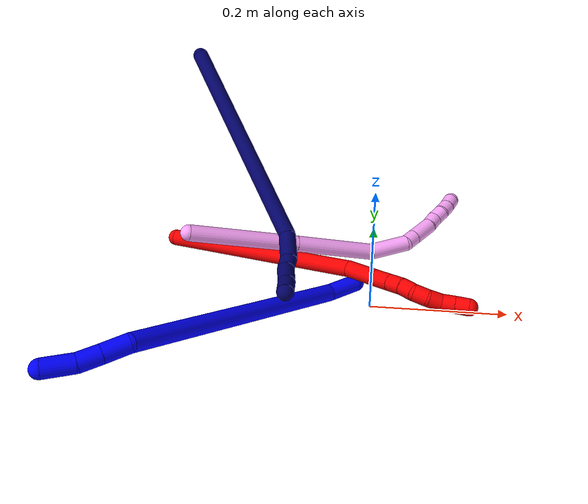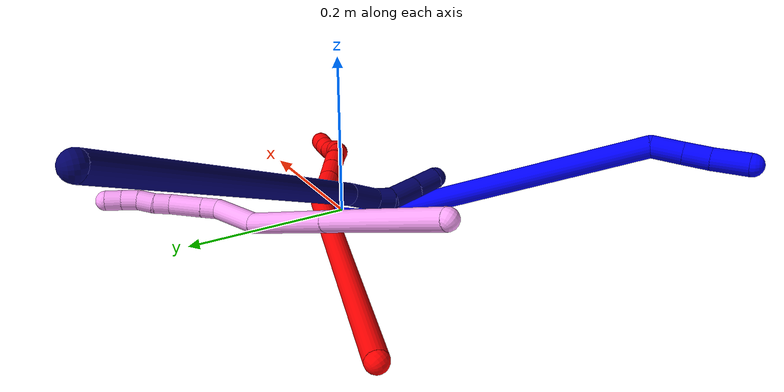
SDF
<sdf version="1.7">
 <world name="default">
  <model name="1">
   <static>0</static>
   <link name="1">
    <collision name="collision-cylinder-e_1_1_4">
     <pose>-0.003028 -0.002243 -0.01988 3.02926 -0.15021 -1.85819</pose>
     <geometry><cylinder><radius>0.0125</radius><length>0.040468</length></cylinder></geometry>
     <surface>
      <friction><ode><mu>1.16</mu><mu2>1.16</mu2><slip1>0</slip1><slip2>0</slip2></ode></friction>
      <contact><ode><kp>1e+06</kp><kd>1</kd><max_vel>0</max_vel><min_depth>0.001</min_depth></ode></contact>
     </surface>
    </collision>
    <visual name="visual-cylinder-e_1_1_4">
     <pose>-0.003028 -0.002243 -0.01988 3.02926 -0.15021 -1.85819</pose>
     <geometry><cylinder><radius>0.0125</radius><length>0.040468</length></cylinder></geometry>
     <material><ambient>0 0 1 1</ambient></material>
    </visual>
    <collision name="collision-cylinder-e_2_4_5">
     <pose>-0.005324 -0.006851 -0.054145 2.97861 0.050154 0.595919</pose>
     <geometry><cylinder><radius>0.0125</radius><length>0.029194</length></cylinder></geometry>
     <surface>
      <friction><ode><mu>1.16</mu><mu2>1.16</mu2><slip1>0</slip1><slip2>0</slip2></ode></friction>
      <contact><ode><kp>1e+06</kp><kd>1</kd><max_vel>0</max_vel><min_depth>0.001</min_depth></ode></contact>
     </surface>
    </collision>
    <visual name="visual-cylinder-e_2_4_5">
     <pose>-0.005324 -0.006851 -0.054145 2.97861 0.050154 0.595919</pose>
     <geometry><cylinder><radius>0.0125</radius><length>0.029194</length></cylinder></geometry>
     <material><ambient>0 0 1 1</ambient></material>
    </visual>
    <collision name="collision-cylinder-e_3_5_6">
     <pose>-0.003384 -0.012129 -0.085321 2.96984 0.07076 0.780155</pose>
     <geometry><cylinder><radius>0.0125</radius><length>0.034168</length></cylinder></geometry>
     <surface>
      <friction><ode><mu>1.16</mu><mu2>1.16</mu2><slip1>0</slip1><slip2>0</slip2></ode></friction>
      <contact><ode><kp>1e+06</kp><kd>1</kd><max_vel>0</max_vel><min_depth>0.001</min_depth></ode></contact>
     </surface>
    </collision>
    <visual name="visual-cylinder-e_3_5_6">
     <pose>-0.003384 -0.012129 -0.085321 2.96984 0.07076 0.780155</pose>
     <geometry><cylinder><radius>0.0125</radius><length>0.034168</length></cylinder></geometry>
     <material><ambient>0 0 1 1</ambient></material>
    </visual>
    <collision name="collision-cylinder-e_4_6_7">
     <pose>0.026494 0.037502 -0.265271 -2.83005 0.165726 -0.972915</pose>
     <geometry><cylinder><radius>0.0125</radius><length>0.347586</length></cylinder></geometry>
     <surface>
      <friction><ode><mu>1.16</mu><mu2>1.16</mu2><slip1>0</slip1><slip2>0</slip2></ode></friction>
      <contact><ode><kp>1e+06</kp><kd>1</kd><max_vel>0</max_vel><min_depth>0.001</min_depth></ode></contact>
     </surface>
    </collision>
    <visual name="visual-cylinder-e_4_6_7">
     <pose>0.026494 0.037502 -0.265271 -2.83005 0.165726 -0.972915</pose>
     <geometry><cylinder><radius>0.0125</radius><length>0.347586</length></cylinder></geometry>
     <material><ambient>0 0 1 1</ambient></material>
    </visual>
    <collision name="collision-cylinder-e_5_7_2">
     <pose>0.057982 0.089597 -0.452555 3.12303 0.116264 2.82533</pose>
     <geometry><cylinder><radius>0.0125</radius><length>0.048585</length></cylinder></geometry>
     <surface>
      <friction><ode><mu>1.16</mu><mu2>1.16</mu2><slip1>0</slip1><slip2>0</slip2></ode></friction>
      <contact><ode><kp>1e+06</kp><kd>1</kd><max_vel>0</max_vel><min_depth>0.001</min_depth></ode></contact>
     </surface>
    </collision>
    <visual name="visual-cylinder-e_5_7_2">
     <pose>0.057982 0.089597 -0.452555 3.12303 0.116264 2.82533</pose>
     <geometry><cylinder><radius>0.0125</radius><length>0.048585</length></cylinder></geometry>
     <material><ambient>0 0 1 1</ambient></material>
    </visual>
    <collision name="collision-sphere-2">
     <pose>0.0608 0.08915 -0.47668 0 -0 0</pose>
     <geometry><sphere><radius>0.0125</radius></sphere></geometry>
     <surface>
      <friction><ode><mu>1.16</mu><mu2>1.16</mu2><slip1>0</slip1><slip2>0</slip2></ode></friction>
      <contact><ode><kp>1e+06</kp><kd>1</kd><max_vel>0</max_vel><min_depth>0.001</min_depth></ode></contact>
     </surface>
    </collision>
    <visual name="visual-sphere-2">
     <pose>0.0608 0.08915 -0.47668 0 -0 0</pose>
     <geometry><sphere><radius>0.0125</radius></sphere></geometry>
     <material><ambient>0 0 1 1</ambient></material>
    </visual>
    <collision name="collision-sphere-7">
     <pose>0.055164 0.090045 -0.428431 0 -0 0</pose>
     <geometry><sphere><radius>0.0125</radius></sphere></geometry>
     <surface>
      <friction><ode><mu>1.16</mu><mu2>1.16</mu2><slip1>0</slip1><slip2>0</slip2></ode></friction>
      <contact><ode><kp>1e+06</kp><kd>1</kd><max_vel>0</max_vel><min_depth>0.001</min_depth></ode></contact>
     </surface>
    </collision>
    <visual name="visual-sphere-7">
     <pose>0.055164 0.090045 -0.428431 0 -0 0</pose>
     <geometry><sphere><radius>0.0125</radius></sphere></geometry>
     <material><ambient>0 0 1 1</ambient></material>
    </visual>
    <collision name="collision-sphere-6">
     <pose>-0.002177 -0.015041 -0.102111 0 -0 0</pose>
     <geometry><sphere><radius>0.0125</radius></sphere></geometry>
     <surface>
      <friction><ode><mu>1.16</mu><mu2>1.16</mu2><slip1>0</slip1><slip2>0</slip2></ode></friction>
      <contact><ode><kp>1e+06</kp><kd>1</kd><max_vel>0</max_vel><min_depth>0.001</min_depth></ode></contact>
     </surface>
    </collision>
    <visual name="visual-sphere-6">
     <pose>-0.002177 -0.015041 -0.102111 0 -0 0</pose>
     <geometry><sphere><radius>0.0125</radius></sphere></geometry>
     <material><ambient>0 0 1 1</ambient></material>
    </visual>
    <collision name="collision-sphere-5">
     <pose>-0.004592 -0.009216 -0.06853 0 -0 0</pose>
     <geometry><sphere><radius>0.0125</radius></sphere></geometry>
     <surface>
      <friction><ode><mu>1.16</mu><mu2>1.16</mu2><slip1>0</slip1><slip2>0</slip2></ode></friction>
      <contact><ode><kp>1e+06</kp><kd>1</kd><max_vel>0</max_vel><min_depth>0.001</min_depth></ode></contact>
     </surface>
    </collision>
    <visual name="visual-sphere-5">
     <pose>-0.004592 -0.009216 -0.06853 0 -0 0</pose>
     <geometry><sphere><radius>0.0125</radius></sphere></geometry>
     <material><ambient>0 0 1 1</ambient></material>
    </visual>
    <collision name="collision-sphere-1">
     <geometry><sphere><radius>0.0125</radius></sphere></geometry>
     <surface>
      <friction><ode><mu>1.16</mu><mu2>1.16</mu2><slip1>0</slip1><slip2>0</slip2></ode></friction>
      <contact><ode><kp>1e+06</kp><kd>1</kd><max_vel>0</max_vel><min_depth>0.001</min_depth></ode></contact>
     </surface>
    </collision>
    <visual name="visual-sphere-1">
     <geometry><sphere><radius>0.0125</radius></sphere></geometry>
     <material><ambient>0 0 1 1</ambient></material>
    </visual>
    <collision name="collision-sphere-4">
     <pose>-0.006056 -0.004485 -0.03976 0 -0 0</pose>
     <geometry><sphere><radius>0.0125</radius></sphere></geometry>
     <surface>
      <friction><ode><mu>1.16</mu><mu2>1.16</mu2><slip1>0</slip1><slip2>0</slip2></ode></friction>
      <contact><ode><kp>1e+06</kp><kd>1</kd><max_vel>0</max_vel><min_depth>0.001</min_depth></ode></contact>
     </surface>
    </collision>
    <visual name="visual-sphere-4">
     <pose>-0.006056 -0.004485 -0.03976 0 -0 0</pose>
     <geometry><sphere><radius>0.0125</radius></sphere></geometry>
     <material><ambient>0 0 1 1</ambient></material>
    </visual>
    <inertial>
     <pose>0.023265 0.033366 -0.238985 0 -0 0</pose>
     <mass>0.5</mass>
     <inertia>
      <ixx>-0.000914</ixx>
      <ixy>0</ixy>
      <ixz>0</ixz>
      <iyy>-0.004583</iyy>
      <iyz>0</iyz>
      <izz>-0.001677</izz>
     </inertia>
    </inertial>
   </link>
   <pose>-0.366515 -0.288501 0.128952 -1.44092 -0.374679 2.09561</pose>
  </model>
  <model name="2">
   <static>0</static>
   <link name="2">
    <collision name="collision-cylinder-e_1_1_4">
     <pose>0.12537 -0.030789 -0.075246 2.7532 0.995482 2.44703</pose>
     <geometry><cylinder><radius>0.0125</radius><length>0.298848</length></cylinder></geometry>
     <surface>
      <friction><ode><mu>1.16</mu><mu2>1.16</mu2><slip1>0</slip1><slip2>0</slip2></ode></friction>
      <contact><ode><kp>1e+06</kp><kd>1</kd><max_vel>0</max_vel><min_depth>0.001</min_depth></ode></contact>
     </surface>
    </collision>
    <visual name="visual-cylinder-e_1_1_4">
     <pose>0.12537 -0.030789 -0.075246 2.7532 0.995482 2.44703</pose>
     <geometry><cylinder><radius>0.0125</radius><length>0.298848</length></cylinder></geometry>
     <material><ambient>1 0 0 1</ambient></material>
    </visual>
    <collision name="collision-cylinder-e_2_4_5">
     <pose>0.266268 -0.066424 -0.170646 2.90559 0.64295 2.4576</pose>
     <geometry><cylinder><radius>0.0125</radius><length>0.051799</length></cylinder></geometry>
     <surface>
      <friction><ode><mu>1.16</mu><mu2>1.16</mu2><slip1>0</slip1><slip2>0</slip2></ode></friction>
      <contact><ode><kp>1e+06</kp><kd>1</kd><max_vel>0</max_vel><min_depth>0.001</min_depth></ode></contact>
     </surface>
    </collision>
    <visual name="visual-cylinder-e_2_4_5">
     <pose>0.266268 -0.066424 -0.170646 2.90559 0.64295 2.4576</pose>
     <geometry><cylinder><radius>0.0125</radius><length>0.051799</length></cylinder></geometry>
     <material><ambient>1 0 0 1</ambient></material>
    </visual>
    <collision name="collision-cylinder-e_3_5_6">
     <pose>0.289605 -0.073838 -0.200866 2.89189 0.644505 2.4225</pose>
     <geometry><cylinder><radius>0.0125</radius><length>0.025992</length></cylinder></geometry>
     <surface>
      <friction><ode><mu>1.16</mu><mu2>1.16</mu2><slip1>0</slip1><slip2>0</slip2></ode></friction>
      <contact><ode><kp>1e+06</kp><kd>1</kd><max_vel>0</max_vel><min_depth>0.001</min_depth></ode></contact>
     </surface>
    </collision>
    <visual name="visual-cylinder-e_3_5_6">
     <pose>0.289605 -0.073838 -0.200866 2.89189 0.644505 2.4225</pose>
     <geometry><cylinder><radius>0.0125</radius><length>0.025992</length></cylinder></geometry>
     <material><ambient>1 0 0 1</ambient></material>
    </visual>
    <collision name="collision-cylinder-e_4_6_7">
     <pose>0.304021 -0.078612 -0.21948 2.8889 0.642608 2.41243</pose>
     <geometry><cylinder><radius>0.0125</radius><length>0.022053</length></cylinder></geometry>
     <surface>
      <friction><ode><mu>1.16</mu><mu2>1.16</mu2><slip1>0</slip1><slip2>0</slip2></ode></friction>
      <contact><ode><kp>1e+06</kp><kd>1</kd><max_vel>0</max_vel><min_depth>0.001</min_depth></ode></contact>
     </surface>
    </collision>
    <visual name="visual-cylinder-e_4_6_7">
     <pose>0.304021 -0.078612 -0.21948 2.8889 0.642608 2.41243</pose>
     <geometry><cylinder><radius>0.0125</radius><length>0.022053</length></cylinder></geometry>
     <material><ambient>1 0 0 1</ambient></material>
    </visual>
    <collision name="collision-cylinder-e_5_7_8">
     <pose>0.317147 -0.081221 -0.235951 3.09089 0.687675 3.0002</pose>
     <geometry><cylinder><radius>0.0125</radius><length>0.020537</length></cylinder></geometry>
     <surface>
      <friction><ode><mu>1.16</mu><mu2>1.16</mu2><slip1>0</slip1><slip2>0</slip2></ode></friction>
      <contact><ode><kp>1e+06</kp><kd>1</kd><max_vel>0</max_vel><min_depth>0.001</min_depth></ode></contact>
     </surface>
    </collision>
    <visual name="visual-cylinder-e_5_7_8">
     <pose>0.317147 -0.081221 -0.235951 3.09089 0.687675 3.0002</pose>
     <geometry><cylinder><radius>0.0125</radius><length>0.020537</length></cylinder></geometry>
     <material><ambient>1 0 0 1</ambient></material>
    </visual>
    <collision name="collision-cylinder-e_6_8_9">
     <pose>0.332954 -0.081222 -0.248404 -3.0531 1.11572 -2.99992</pose>
     <geometry><cylinder><radius>0.0125</radius><length>0.020684</length></cylinder></geometry>
     <surface>
      <friction><ode><mu>1.16</mu><mu2>1.16</mu2><slip1>0</slip1><slip2>0</slip2></ode></friction>
      <contact><ode><kp>1e+06</kp><kd>1</kd><max_vel>0</max_vel><min_depth>0.001</min_depth></ode></contact>
     </surface>
    </collision>
    <visual name="visual-cylinder-e_6_8_9">
     <pose>0.332954 -0.081222 -0.248404 -3.0531 1.11572 -2.99992</pose>
     <geometry><cylinder><radius>0.0125</radius><length>0.020684</length></cylinder></geometry>
     <material><ambient>1 0 0 1</ambient></material>
    </visual>
    <collision name="collision-cylinder-e_7_9_10">
     <pose>0.352125 -0.079848 -0.254174 -2.47766 1.41251 -2.37349</pose>
     <geometry><cylinder><radius>0.0125</radius><length>0.020012</length></cylinder></geometry>
     <surface>
      <friction><ode><mu>1.16</mu><mu2>1.16</mu2><slip1>0</slip1><slip2>0</slip2></ode></friction>
      <contact><ode><kp>1e+06</kp><kd>1</kd><max_vel>0</max_vel><min_depth>0.001</min_depth></ode></contact>
     </surface>
    </collision>
    <visual name="visual-cylinder-e_7_9_10">
     <pose>0.352125 -0.079848 -0.254174 -2.47766 1.41251 -2.37349</pose>
     <geometry><cylinder><radius>0.0125</radius><length>0.020012</length></cylinder></geometry>
     <material><ambient>1 0 0 1</ambient></material>
    </visual>
    <collision name="collision-cylinder-e_8_10_11">
     <pose>0.371278 -0.080564 -0.258786 2.67738 1.18473 2.46607</pose>
     <geometry><cylinder><radius>0.0125</radius><length>0.020019</length></cylinder></geometry>
     <surface>
      <friction><ode><mu>1.16</mu><mu2>1.16</mu2><slip1>0</slip1><slip2>0</slip2></ode></friction>
      <contact><ode><kp>1e+06</kp><kd>1</kd><max_vel>0</max_vel><min_depth>0.001</min_depth></ode></contact>
     </surface>
    </collision>
    <visual name="visual-cylinder-e_8_10_11">
     <pose>0.371278 -0.080564 -0.258786 2.67738 1.18473 2.46607</pose>
     <geometry><cylinder><radius>0.0125</radius><length>0.020019</length></cylinder></geometry>
     <material><ambient>1 0 0 1</ambient></material>
    </visual>
    <collision name="collision-cylinder-e_9_11_2">
     <pose>0.389657 -0.083866 -0.266033 2.74685 1.13867 2.53593</pose>
     <geometry><cylinder><radius>0.0125</radius><length>0.020056</length></cylinder></geometry>
     <surface>
      <friction><ode><mu>1.16</mu><mu2>1.16</mu2><slip1>0</slip1><slip2>0</slip2></ode></friction>
      <contact><ode><kp>1e+06</kp><kd>1</kd><max_vel>0</max_vel><min_depth>0.001</min_depth></ode></contact>
     </surface>
    </collision>
    <visual name="visual-cylinder-e_9_11_2">
     <pose>0.389657 -0.083866 -0.266033 2.74685 1.13867 2.53593</pose>
     <geometry><cylinder><radius>0.0125</radius><length>0.020056</length></cylinder></geometry>
     <material><ambient>1 0 0 1</ambient></material>
    </visual>
    <collision name="collision-sphere-2">
     <pose>0.398763 -0.085481 -0.26991 0 -0 0</pose>
     <geometry><sphere><radius>0.0125</radius></sphere></geometry>
     <surface>
      <friction><ode><mu>1.16</mu><mu2>1.16</mu2><slip1>0</slip1><slip2>0</slip2></ode></friction>
      <contact><ode><kp>1e+06</kp><kd>1</kd><max_vel>0</max_vel><min_depth>0.001</min_depth></ode></contact>
     </surface>
    </collision>
    <visual name="visual-sphere-2">
     <pose>0.398763 -0.085481 -0.26991 0 -0 0</pose>
     <geometry><sphere><radius>0.0125</radius></sphere></geometry>
     <material><ambient>1 0 0 1</ambient></material>
    </visual>
    <collision name="collision-sphere-11">
     <pose>0.38055 -0.082251 -0.262156 0 -0 0</pose>
     <geometry><sphere><radius>0.0125</radius></sphere></geometry>
     <surface>
      <friction><ode><mu>1.16</mu><mu2>1.16</mu2><slip1>0</slip1><slip2>0</slip2></ode></friction>
      <contact><ode><kp>1e+06</kp><kd>1</kd><max_vel>0</max_vel><min_depth>0.001</min_depth></ode></contact>
     </surface>
    </collision>
    <visual name="visual-sphere-11">
     <pose>0.38055 -0.082251 -0.262156 0 -0 0</pose>
     <geometry><sphere><radius>0.0125</radius></sphere></geometry>
     <material><ambient>1 0 0 1</ambient></material>
    </visual>
    <collision name="collision-sphere-10">
     <pose>0.362005 -0.078876 -0.255416 0 -0 0</pose>
     <geometry><sphere><radius>0.0125</radius></sphere></geometry>
     <surface>
      <friction><ode><mu>1.16</mu><mu2>1.16</mu2><slip1>0</slip1><slip2>0</slip2></ode></friction>
      <contact><ode><kp>1e+06</kp><kd>1</kd><max_vel>0</max_vel><min_depth>0.001</min_depth></ode></contact>
     </surface>
    </collision>
    <visual name="visual-sphere-10">
     <pose>0.362005 -0.078876 -0.255416 0 -0 0</pose>
     <geometry><sphere><radius>0.0125</radius></sphere></geometry>
     <material><ambient>1 0 0 1</ambient></material>
    </visual>
    <collision name="collision-sphere-9">
     <pose>0.342244 -0.08082 -0.252932 0 -0 0</pose>
     <geometry><sphere><radius>0.0125</radius></sphere></geometry>
     <surface>
      <friction><ode><mu>1.16</mu><mu2>1.16</mu2><slip1>0</slip1><slip2>0</slip2></ode></friction>
      <contact><ode><kp>1e+06</kp><kd>1</kd><max_vel>0</max_vel><min_depth>0.001</min_depth></ode></contact>
     </surface>
    </collision>
    <visual name="visual-sphere-9">
     <pose>0.342244 -0.08082 -0.252932 0 -0 0</pose>
     <geometry><sphere><radius>0.0125</radius></sphere></geometry>
     <material><ambient>1 0 0 1</ambient></material>
    </visual>
    <collision name="collision-sphere-4">
     <pose>0.25074 -0.061577 -0.150492 0 -0 0</pose>
     <geometry><sphere><radius>0.0125</radius></sphere></geometry>
     <surface>
      <friction><ode><mu>1.16</mu><mu2>1.16</mu2><slip1>0</slip1><slip2>0</slip2></ode></friction>
      <contact><ode><kp>1e+06</kp><kd>1</kd><max_vel>0</max_vel><min_depth>0.001</min_depth></ode></contact>
     </surface>
    </collision>
    <visual name="visual-sphere-4">
     <pose>0.25074 -0.061577 -0.150492 0 -0 0</pose>
     <geometry><sphere><radius>0.0125</radius></sphere></geometry>
     <material><ambient>1 0 0 1</ambient></material>
    </visual>
    <collision name="collision-sphere-1">
     <geometry><sphere><radius>0.0125</radius></sphere></geometry>
     <surface>
      <friction><ode><mu>1.16</mu><mu2>1.16</mu2><slip1>0</slip1><slip2>0</slip2></ode></friction>
      <contact><ode><kp>1e+06</kp><kd>1</kd><max_vel>0</max_vel><min_depth>0.001</min_depth></ode></contact>
     </surface>
    </collision>
    <visual name="visual-sphere-1">
     <geometry><sphere><radius>0.0125</radius></sphere></geometry>
     <material><ambient>1 0 0 1</ambient></material>
    </visual>
    <collision name="collision-sphere-8">
     <pose>0.323665 -0.081624 -0.243876 0 -0 0</pose>
     <geometry><sphere><radius>0.0125</radius></sphere></geometry>
     <surface>
      <friction><ode><mu>1.16</mu><mu2>1.16</mu2><slip1>0</slip1><slip2>0</slip2></ode></friction>
      <contact><ode><kp>1e+06</kp><kd>1</kd><max_vel>0</max_vel><min_depth>0.001</min_depth></ode></contact>
     </surface>
    </collision>
    <visual name="visual-sphere-8">
     <pose>0.323665 -0.081624 -0.243876 0 -0 0</pose>
     <geometry><sphere><radius>0.0125</radius></sphere></geometry>
     <material><ambient>1 0 0 1</ambient></material>
    </visual>
    <collision name="collision-sphere-5">
     <pose>0.281797 -0.071271 -0.190799 0 -0 0</pose>
     <geometry><sphere><radius>0.0125</radius></sphere></geometry>
     <surface>
      <friction><ode><mu>1.16</mu><mu2>1.16</mu2><slip1>0</slip1><slip2>0</slip2></ode></friction>
      <contact><ode><kp>1e+06</kp><kd>1</kd><max_vel>0</max_vel><min_depth>0.001</min_depth></ode></contact>
     </surface>
    </collision>
    <visual name="visual-sphere-5">
     <pose>0.281797 -0.071271 -0.190799 0 -0 0</pose>
     <geometry><sphere><radius>0.0125</radius></sphere></geometry>
     <material><ambient>1 0 0 1</ambient></material>
    </visual>
    <collision name="collision-sphere-6">
     <pose>0.297413 -0.076405 -0.210933 0 -0 0</pose>
     <geometry><sphere><radius>0.0125</radius></sphere></geometry>
     <surface>
      <friction><ode><mu>1.16</mu><mu2>1.16</mu2><slip1>0</slip1><slip2>0</slip2></ode></friction>
      <contact><ode><kp>1e+06</kp><kd>1</kd><max_vel>0</max_vel><min_depth>0.001</min_depth></ode></contact>
     </surface>
    </collision>
    <visual name="visual-sphere-6">
     <pose>0.297413 -0.076405 -0.210933 0 -0 0</pose>
     <geometry><sphere><radius>0.0125</radius></sphere></geometry>
     <material><ambient>1 0 0 1</ambient></material>
    </visual>
    <collision name="collision-sphere-7">
     <pose>0.310629 -0.080819 -0.228027 0 -0 0</pose>
     <geometry><sphere><radius>0.0125</radius></sphere></geometry>
     <surface>
      <friction><ode><mu>1.16</mu><mu2>1.16</mu2><slip1>0</slip1><slip2>0</slip2></ode></friction>
      <contact><ode><kp>1e+06</kp><kd>1</kd><max_vel>0</max_vel><min_depth>0.001</min_depth></ode></contact>
     </surface>
    </collision>
    <visual name="visual-sphere-7">
     <pose>0.310629 -0.080819 -0.228027 0 -0 0</pose>
     <geometry><sphere><radius>0.0125</radius></sphere></geometry>
     <material><ambient>1 0 0 1</ambient></material>
    </visual>
    <inertial>
     <pose>0.20237 -0.049071 -0.133948 0 -0 0</pose>
     <mass>0.5</mass>
     <inertia>
      <ixx>-0.000129</ixx>
      <ixy>0</ixy>
      <ixz>0</ixz>
      <iyy>0.002849</iyy>
      <iyz>0</iyz>
      <izz>-0.00145</izz>
     </inertia>
    </inertial>
   </link>
   <pose>-0.320396 0.128154 0.011868 -1.82203 0.286654 0.166579</pose>
  </model>
  <model name="4">
   <static>0</static>
   <link name="4">
    <collision name="collision-cylinder-e_1_1_4">
     <pose>0.070685 0.046117 -0.005526 -1.69004 0.98945 -1.09252</pose>
     <geometry><cylinder><radius>0.0125</radius><length>0.16916</length></cylinder></geometry>
     <surface>
      <friction><ode><mu>1.16</mu><mu2>1.16</mu2><slip1>0</slip1><slip2>0</slip2></ode></friction>
      <contact><ode><kp>1e+06</kp><kd>1</kd><max_vel>0</max_vel><min_depth>0.001</min_depth></ode></contact>
     </surface>
    </collision>
    <visual name="visual-cylinder-e_1_1_4">
     <pose>0.070685 0.046117 -0.005526 -1.69004 0.98945 -1.09252</pose>
     <geometry><cylinder><radius>0.0125</radius><length>0.16916</length></cylinder></geometry>
     <material><ambient>1 0.65098 0.996078 1</ambient></material>
    </visual>
    <collision name="collision-cylinder-e_2_4_5">
     <pose>0.195006 0.126808 -0.015257 -1.69184 0.994875 -1.09989</pose>
     <geometry><cylinder><radius>0.0125</radius><length>0.127903</length></cylinder></geometry>
     <surface>
      <friction><ode><mu>1.16</mu><mu2>1.16</mu2><slip1>0</slip1><slip2>0</slip2></ode></friction>
      <contact><ode><kp>1e+06</kp><kd>1</kd><max_vel>0</max_vel><min_depth>0.001</min_depth></ode></contact>
     </surface>
    </collision>
    <visual name="visual-cylinder-e_2_4_5">
     <pose>0.195006 0.126808 -0.015257 -1.69184 0.994875 -1.09989</pose>
     <geometry><cylinder><radius>0.0125</radius><length>0.127903</length></cylinder></geometry>
     <material><ambient>1 0.65098 0.996078 1</ambient></material>
    </visual>
    <collision name="collision-cylinder-e_3_5_6">
     <pose>0.267107 0.185585 -0.018318 -1.52357 0.651158 -0.623059</pose>
     <geometry><cylinder><radius>0.0125</radius><length>0.060929</length></cylinder></geometry>
     <surface>
      <friction><ode><mu>1.16</mu><mu2>1.16</mu2><slip1>0</slip1><slip2>0</slip2></ode></friction>
      <contact><ode><kp>1e+06</kp><kd>1</kd><max_vel>0</max_vel><min_depth>0.001</min_depth></ode></contact>
     </surface>
    </collision>
    <visual name="visual-cylinder-e_3_5_6">
     <pose>0.267107 0.185585 -0.018318 -1.52357 0.651158 -0.623059</pose>
     <geometry><cylinder><radius>0.0125</radius><length>0.060929</length></cylinder></geometry>
     <material><ambient>1 0.65098 0.996078 1</ambient></material>
    </visual>
    <collision name="collision-cylinder-e_4_6_7">
     <pose>0.289346 0.218344 -0.021027 -1.99396 0.382474 -0.582042</pose>
     <geometry><cylinder><radius>0.0125</radius><length>0.020225</length></cylinder></geometry>
     <surface>
      <friction><ode><mu>1.16</mu><mu2>1.16</mu2><slip1>0</slip1><slip2>0</slip2></ode></friction>
      <contact><ode><kp>1e+06</kp><kd>1</kd><max_vel>0</max_vel><min_depth>0.001</min_depth></ode></contact>
     </surface>
    </collision>
    <visual name="visual-cylinder-e_4_6_7">
     <pose>0.289346 0.218344 -0.021027 -1.99396 0.382474 -0.582042</pose>
     <geometry><cylinder><radius>0.0125</radius><length>0.020225</length></cylinder></geometry>
     <material><ambient>1 0.65098 0.996078 1</ambient></material>
    </visual>
    <collision name="collision-cylinder-e_5_7_8">
     <pose>0.300649 0.244319 -0.032557 -1.98588 0.376602 -0.568605</pose>
     <geometry><cylinder><radius>0.0125</radius><length>0.040945</length></cylinder></geometry>
     <surface>
      <friction><ode><mu>1.16</mu><mu2>1.16</mu2><slip1>0</slip1><slip2>0</slip2></ode></friction>
      <contact><ode><kp>1e+06</kp><kd>1</kd><max_vel>0</max_vel><min_depth>0.001</min_depth></ode></contact>
     </surface>
    </collision>
    <visual name="visual-cylinder-e_5_7_8">
     <pose>0.300649 0.244319 -0.032557 -1.98588 0.376602 -0.568605</pose>
     <geometry><cylinder><radius>0.0125</radius><length>0.040945</length></cylinder></geometry>
     <material><ambient>1 0.65098 0.996078 1</ambient></material>
    </visual>
    <collision name="collision-cylinder-e_6_8_9">
     <pose>0.310507 0.27013 -0.045278 -2.11211 0.233586 -0.409073</pose>
     <geometry><cylinder><radius>0.0125</radius><length>0.020125</length></cylinder></geometry>
     <surface>
      <friction><ode><mu>1.16</mu><mu2>1.16</mu2><slip1>0</slip1><slip2>0</slip2></ode></friction>
      <contact><ode><kp>1e+06</kp><kd>1</kd><max_vel>0</max_vel><min_depth>0.001</min_depth></ode></contact>
     </surface>
    </collision>
    <visual name="visual-cylinder-e_6_8_9">
     <pose>0.310507 0.27013 -0.045278 -2.11211 0.233586 -0.409073</pose>
     <geometry><cylinder><radius>0.0125</radius><length>0.020125</length></cylinder></geometry>
     <material><ambient>1 0.65098 0.996078 1</ambient></material>
    </visual>
    <collision name="collision-cylinder-e_7_9_10">
     <pose>0.315703 0.287782 -0.053562 -1.9073 0.284267 -0.397977</pose>
     <geometry><cylinder><radius>0.0125</radius><length>0.020447</length></cylinder></geometry>
     <surface>
      <friction><ode><mu>1.16</mu><mu2>1.16</mu2><slip1>0</slip1><slip2>0</slip2></ode></friction>
      <contact><ode><kp>1e+06</kp><kd>1</kd><max_vel>0</max_vel><min_depth>0.001</min_depth></ode></contact>
     </surface>
    </collision>
    <visual name="visual-cylinder-e_7_9_10">
     <pose>0.315703 0.287782 -0.053562 -1.9073 0.284267 -0.397977</pose>
     <geometry><cylinder><radius>0.0125</radius><length>0.020447</length></cylinder></geometry>
     <material><ambient>1 0.65098 0.996078 1</ambient></material>
    </visual>
    <collision name="collision-cylinder-e_8_10_11">
     <pose>0.321443 0.305076 -0.062072 -2.15148 0.290582 -0.529319</pose>
     <geometry><cylinder><radius>0.0125</radius><length>0.020051</length></cylinder></geometry>
     <surface>
      <friction><ode><mu>1.16</mu><mu2>1.16</mu2><slip1>0</slip1><slip2>0</slip2></ode></friction>
      <contact><ode><kp>1e+06</kp><kd>1</kd><max_vel>0</max_vel><min_depth>0.001</min_depth></ode></contact>
     </surface>
    </collision>
    <visual name="visual-cylinder-e_8_10_11">
     <pose>0.321443 0.305076 -0.062072 -2.15148 0.290582 -0.529319</pose>
     <geometry><cylinder><radius>0.0125</radius><length>0.020051</length></cylinder></geometry>
     <material><ambient>1 0.65098 0.996078 1</ambient></material>
    </visual>
    <collision name="collision-cylinder-e_9_11_2">
     <pose>0.326491 0.321022 -0.073239 -2.21114 0.216968 -0.427308</pose>
     <geometry><cylinder><radius>0.0125</radius><length>0.020215</length></cylinder></geometry>
     <surface>
      <friction><ode><mu>1.16</mu><mu2>1.16</mu2><slip1>0</slip1><slip2>0</slip2></ode></friction>
      <contact><ode><kp>1e+06</kp><kd>1</kd><max_vel>0</max_vel><min_depth>0.001</min_depth></ode></contact>
     </surface>
    </collision>
    <visual name="visual-cylinder-e_9_11_2">
     <pose>0.326491 0.321022 -0.073239 -2.21114 0.216968 -0.427308</pose>
     <geometry><cylinder><radius>0.0125</radius><length>0.020215</length></cylinder></geometry>
     <material><ambient>1 0.65098 0.996078 1</ambient></material>
    </visual>
    <collision name="collision-sphere-2">
     <pose>0.328667 0.328937 -0.079136 0 -0 0</pose>
     <geometry><sphere><radius>0.0125</radius></sphere></geometry>
     <surface>
      <friction><ode><mu>1.16</mu><mu2>1.16</mu2><slip1>0</slip1><slip2>0</slip2></ode></friction>
      <contact><ode><kp>1e+06</kp><kd>1</kd><max_vel>0</max_vel><min_depth>0.001</min_depth></ode></contact>
     </surface>
    </collision>
    <visual name="visual-sphere-2">
     <pose>0.328667 0.328937 -0.079136 0 -0 0</pose>
     <geometry><sphere><radius>0.0125</radius></sphere></geometry>
     <material><ambient>1 0.65098 0.996078 1</ambient></material>
    </visual>
    <collision name="collision-sphere-11">
     <pose>0.324315 0.313107 -0.067341 0 -0 0</pose>
     <geometry><sphere><radius>0.0125</radius></sphere></geometry>
     <surface>
      <friction><ode><mu>1.16</mu><mu2>1.16</mu2><slip1>0</slip1><slip2>0</slip2></ode></friction>
      <contact><ode><kp>1e+06</kp><kd>1</kd><max_vel>0</max_vel><min_depth>0.001</min_depth></ode></contact>
     </surface>
    </collision>
    <visual name="visual-sphere-11">
     <pose>0.324315 0.313107 -0.067341 0 -0 0</pose>
     <geometry><sphere><radius>0.0125</radius></sphere></geometry>
     <material><ambient>1 0.65098 0.996078 1</ambient></material>
    </visual>
    <collision name="collision-sphere-10">
     <pose>0.31857 0.297045 -0.056802 0 -0 0</pose>
     <geometry><sphere><radius>0.0125</radius></sphere></geometry>
     <surface>
      <friction><ode><mu>1.16</mu><mu2>1.16</mu2><slip1>0</slip1><slip2>0</slip2></ode></friction>
      <contact><ode><kp>1e+06</kp><kd>1</kd><max_vel>0</max_vel><min_depth>0.001</min_depth></ode></contact>
     </surface>
    </collision>
    <visual name="visual-sphere-10">
     <pose>0.31857 0.297045 -0.056802 0 -0 0</pose>
     <geometry><sphere><radius>0.0125</radius></sphere></geometry>
     <material><ambient>1 0.65098 0.996078 1</ambient></material>
    </visual>
    <collision name="collision-sphere-9">
     <pose>0.312836 0.278519 -0.050322 0 -0 0</pose>
     <geometry><sphere><radius>0.0125</radius></sphere></geometry>
     <surface>
      <friction><ode><mu>1.16</mu><mu2>1.16</mu2><slip1>0</slip1><slip2>0</slip2></ode></friction>
      <contact><ode><kp>1e+06</kp><kd>1</kd><max_vel>0</max_vel><min_depth>0.001</min_depth></ode></contact>
     </surface>
    </collision>
    <visual name="visual-sphere-9">
     <pose>0.312836 0.278519 -0.050322 0 -0 0</pose>
     <geometry><sphere><radius>0.0125</radius></sphere></geometry>
     <material><ambient>1 0.65098 0.996078 1</ambient></material>
    </visual>
    <collision name="collision-sphere-4">
     <pose>0.141371 0.092234 -0.011051 0 -0 0</pose>
     <geometry><sphere><radius>0.0125</radius></sphere></geometry>
     <surface>
      <friction><ode><mu>1.16</mu><mu2>1.16</mu2><slip1>0</slip1><slip2>0</slip2></ode></friction>
      <contact><ode><kp>1e+06</kp><kd>1</kd><max_vel>0</max_vel><min_depth>0.001</min_depth></ode></contact>
     </surface>
    </collision>
    <visual name="visual-sphere-4">
     <pose>0.141371 0.092234 -0.011051 0 -0 0</pose>
     <geometry><sphere><radius>0.0125</radius></sphere></geometry>
     <material><ambient>1 0.65098 0.996078 1</ambient></material>
    </visual>
    <collision name="collision-sphere-1">
     <geometry><sphere><radius>0.0125</radius></sphere></geometry>
     <surface>
      <friction><ode><mu>1.16</mu><mu2>1.16</mu2><slip1>0</slip1><slip2>0</slip2></ode></friction>
      <contact><ode><kp>1e+06</kp><kd>1</kd><max_vel>0</max_vel><min_depth>0.001</min_depth></ode></contact>
     </surface>
    </collision>
    <visual name="visual-sphere-1">
     <geometry><sphere><radius>0.0125</radius></sphere></geometry>
     <material><ambient>1 0.65098 0.996078 1</ambient></material>
    </visual>
    <collision name="collision-sphere-8">
     <pose>0.308178 0.26174 -0.040234 0 -0 0</pose>
     <geometry><sphere><radius>0.0125</radius></sphere></geometry>
     <surface>
      <friction><ode><mu>1.16</mu><mu2>1.16</mu2><slip1>0</slip1><slip2>0</slip2></ode></friction>
      <contact><ode><kp>1e+06</kp><kd>1</kd><max_vel>0</max_vel><min_depth>0.001</min_depth></ode></contact>
     </surface>
    </collision>
    <visual name="visual-sphere-8">
     <pose>0.308178 0.26174 -0.040234 0 -0 0</pose>
     <geometry><sphere><radius>0.0125</radius></sphere></geometry>
     <material><ambient>1 0.65098 0.996078 1</ambient></material>
    </visual>
    <collision name="collision-sphere-5">
     <pose>0.248642 0.161382 -0.019462 0 -0 0</pose>
     <geometry><sphere><radius>0.0125</radius></sphere></geometry>
     <surface>
      <friction><ode><mu>1.16</mu><mu2>1.16</mu2><slip1>0</slip1><slip2>0</slip2></ode></friction>
      <contact><ode><kp>1e+06</kp><kd>1</kd><max_vel>0</max_vel><min_depth>0.001</min_depth></ode></contact>
     </surface>
    </collision>
    <visual name="visual-sphere-5">
     <pose>0.248642 0.161382 -0.019462 0 -0 0</pose>
     <geometry><sphere><radius>0.0125</radius></sphere></geometry>
     <material><ambient>1 0.65098 0.996078 1</ambient></material>
    </visual>
    <collision name="collision-sphere-6">
     <pose>0.285571 0.209789 -0.017174 0 -0 0</pose>
     <geometry><sphere><radius>0.0125</radius></sphere></geometry>
     <surface>
      <friction><ode><mu>1.16</mu><mu2>1.16</mu2><slip1>0</slip1><slip2>0</slip2></ode></friction>
      <contact><ode><kp>1e+06</kp><kd>1</kd><max_vel>0</max_vel><min_depth>0.001</min_depth></ode></contact>
     </surface>
    </collision>
    <visual name="visual-sphere-6">
     <pose>0.285571 0.209789 -0.017174 0 -0 0</pose>
     <geometry><sphere><radius>0.0125</radius></sphere></geometry>
     <material><ambient>1 0.65098 0.996078 1</ambient></material>
    </visual>
    <collision name="collision-sphere-7">
     <pose>0.29312 0.226898 -0.024879 0 -0 0</pose>
     <geometry><sphere><radius>0.0125</radius></sphere></geometry>
     <surface>
      <friction><ode><mu>1.16</mu><mu2>1.16</mu2><slip1>0</slip1><slip2>0</slip2></ode></friction>
      <contact><ode><kp>1e+06</kp><kd>1</kd><max_vel>0</max_vel><min_depth>0.001</min_depth></ode></contact>
     </surface>
    </collision>
    <visual name="visual-sphere-7">
     <pose>0.29312 0.226898 -0.024879 0 -0 0</pose>
     <geometry><sphere><radius>0.0125</radius></sphere></geometry>
     <material><ambient>1 0.65098 0.996078 1</ambient></material>
    </visual>
    <inertial>
     <pose>0.19417 0.14735 -0.020984 0 -0 0</pose>
     <mass>0.5</mass>
     <inertia>
      <ixx>-0.000104</ixx>
      <ixy>0</ixy>
      <ixz>0</ixz>
      <iyy>0.00013</iyy>
      <iyz>0</iyz>
      <izz>-0.000867</izz>
     </inertia>
    </inertial>
   </link>
   <pose>-0.26759 0.020109 0.102023 0.889833 0.76419 -0.068259</pose>
  </model>
  <model name="7">
   <static>0</static>
   <link name="7">
    <collision name="collision-cylinder-e_1_1_4">
     <pose>0.062497 -0.085356 -0.154679 2.63735 0.34002 1.17563</pose>
     <geometry><cylinder><radius>0.0125</radius><length>0.374791</length></cylinder></geometry>
     <surface>
      <friction><ode><mu>1.16</mu><mu2>1.16</mu2><slip1>0</slip1><slip2>0</slip2></ode></friction>
      <contact><ode><kp>1e+06</kp><kd>1</kd><max_vel>0</max_vel><min_depth>0.001</min_depth></ode></contact>
     </surface>
    </collision>
    <visual name="visual-cylinder-e_1_1_4">
     <pose>0.062497 -0.085356 -0.154679 2.63735 0.34002 1.17563</pose>
     <geometry><cylinder><radius>0.0125</radius><length>0.374791</length></cylinder></geometry>
     <material><ambient>0.003922 0 0.403922 1</ambient></material>
    </visual>
    <collision name="collision-cylinder-e_2_4_5">
     <pose>0.132544 -0.173268 -0.327855 3.0043 0.384158 2.46195</pose>
     <geometry><cylinder><radius>0.0125</radius><length>0.040283</length></cylinder></geometry>
     <surface>
      <friction><ode><mu>1.16</mu><mu2>1.16</mu2><slip1>0</slip1><slip2>0</slip2></ode></friction>
      <contact><ode><kp>1e+06</kp><kd>1</kd><max_vel>0</max_vel><min_depth>0.001</min_depth></ode></contact>
     </surface>
    </collision>
    <visual name="visual-cylinder-e_2_4_5">
     <pose>0.132544 -0.173268 -0.327855 3.0043 0.384158 2.46195</pose>
     <geometry><cylinder><radius>0.0125</radius><length>0.040283</length></cylinder></geometry>
     <material><ambient>0.003922 0 0.403922 1</ambient></material>
    </visual>
    <collision name="collision-cylinder-e_3_5_6">
     <pose>0.141409 -0.174218 -0.356524 -2.98506 0.127177 -1.36394</pose>
     <geometry><cylinder><radius>0.0125</radius><length>0.020761</length></cylinder></geometry>
     <surface>
      <friction><ode><mu>1.16</mu><mu2>1.16</mu2><slip1>0</slip1><slip2>0</slip2></ode></friction>
      <contact><ode><kp>1e+06</kp><kd>1</kd><max_vel>0</max_vel><min_depth>0.001</min_depth></ode></contact>
     </surface>
    </collision>
    <visual name="visual-cylinder-e_3_5_6">
     <pose>0.141409 -0.174218 -0.356524 -2.98506 0.127177 -1.36394</pose>
     <geometry><cylinder><radius>0.0125</radius><length>0.020761</length></cylinder></geometry>
     <material><ambient>0.003922 0 0.403922 1</ambient></material>
    </visual>
    <collision name="collision-cylinder-e_4_6_7">
     <pose>0.139844 -0.173683 -0.384449 3.08145 -0.160624 -2.42623</pose>
     <geometry><cylinder><radius>0.0125</radius><length>0.036038</length></cylinder></geometry>
     <surface>
      <friction><ode><mu>1.16</mu><mu2>1.16</mu2><slip1>0</slip1><slip2>0</slip2></ode></friction>
      <contact><ode><kp>1e+06</kp><kd>1</kd><max_vel>0</max_vel><min_depth>0.001</min_depth></ode></contact>
     </surface>
    </collision>
    <visual name="visual-cylinder-e_4_6_7">
     <pose>0.139844 -0.173683 -0.384449 3.08145 -0.160624 -2.42623</pose>
     <geometry><cylinder><radius>0.0125</radius><length>0.036038</length></cylinder></geometry>
     <material><ambient>0.003922 0 0.403922 1</ambient></material>
    </visual>
    <collision name="collision-cylinder-e_5_7_2">
     <pose>0.133839 -0.174095 -0.415901 -3.09365 -0.223941 2.72143</pose>
     <geometry><cylinder><radius>0.0125</radius><length>0.028127</length></cylinder></geometry>
     <surface>
      <friction><ode><mu>1.16</mu><mu2>1.16</mu2><slip1>0</slip1><slip2>0</slip2></ode></friction>
      <contact><ode><kp>1e+06</kp><kd>1</kd><max_vel>0</max_vel><min_depth>0.001</min_depth></ode></contact>
     </surface>
    </collision>
    <visual name="visual-cylinder-e_5_7_2">
     <pose>0.133839 -0.174095 -0.415901 -3.09365 -0.223941 2.72143</pose>
     <geometry><cylinder><radius>0.0125</radius><length>0.028127</length></cylinder></geometry>
     <material><ambient>0.003922 0 0.403922 1</ambient></material>
    </visual>
    <collision name="collision-sphere-2">
     <pose>0.130715 -0.173437 -0.429597 0 -0 0</pose>
     <geometry><sphere><radius>0.0125</radius></sphere></geometry>
     <surface>
      <friction><ode><mu>1.16</mu><mu2>1.16</mu2><slip1>0</slip1><slip2>0</slip2></ode></friction>
      <contact><ode><kp>1e+06</kp><kd>1</kd><max_vel>0</max_vel><min_depth>0.001</min_depth></ode></contact>
     </surface>
    </collision>
    <visual name="visual-sphere-2">
     <pose>0.130715 -0.173437 -0.429597 0 -0 0</pose>
     <geometry><sphere><radius>0.0125</radius></sphere></geometry>
     <material><ambient>0.003922 0 0.403922 1</ambient></material>
    </visual>
    <collision name="collision-sphere-7">
     <pose>0.136962 -0.174752 -0.402204 0 -0 0</pose>
     <geometry><sphere><radius>0.0125</radius></sphere></geometry>
     <surface>
      <friction><ode><mu>1.16</mu><mu2>1.16</mu2><slip1>0</slip1><slip2>0</slip2></ode></friction>
      <contact><ode><kp>1e+06</kp><kd>1</kd><max_vel>0</max_vel><min_depth>0.001</min_depth></ode></contact>
     </surface>
    </collision>
    <visual name="visual-sphere-7">
     <pose>0.136962 -0.174752 -0.402204 0 -0 0</pose>
     <geometry><sphere><radius>0.0125</radius></sphere></geometry>
     <material><ambient>0.003922 0 0.403922 1</ambient></material>
    </visual>
    <collision name="collision-sphere-6">
     <pose>0.142725 -0.172613 -0.366694 0 -0 0</pose>
     <geometry><sphere><radius>0.0125</radius></sphere></geometry>
     <surface>
      <friction><ode><mu>1.16</mu><mu2>1.16</mu2><slip1>0</slip1><slip2>0</slip2></ode></friction>
      <contact><ode><kp>1e+06</kp><kd>1</kd><max_vel>0</max_vel><min_depth>0.001</min_depth></ode></contact>
     </surface>
    </collision>
    <visual name="visual-sphere-6">
     <pose>0.142725 -0.172613 -0.366694 0 -0 0</pose>
     <geometry><sphere><radius>0.0125</radius></sphere></geometry>
     <material><ambient>0.003922 0 0.403922 1</ambient></material>
    </visual>
    <collision name="collision-sphere-5">
     <pose>0.140092 -0.175824 -0.346353 0 -0 0</pose>
     <geometry><sphere><radius>0.0125</radius></sphere></geometry>
     <surface>
      <friction><ode><mu>1.16</mu><mu2>1.16</mu2><slip1>0</slip1><slip2>0</slip2></ode></friction>
      <contact><ode><kp>1e+06</kp><kd>1</kd><max_vel>0</max_vel><min_depth>0.001</min_depth></ode></contact>
     </surface>
    </collision>
    <visual name="visual-sphere-5">
     <pose>0.140092 -0.175824 -0.346353 0 -0 0</pose>
     <geometry><sphere><radius>0.0125</radius></sphere></geometry>
     <material><ambient>0.003922 0 0.403922 1</ambient></material>
    </visual>
    <collision name="collision-sphere-1">
     <geometry><sphere><radius>0.0125</radius></sphere></geometry>
     <surface>
      <friction><ode><mu>1.16</mu><mu2>1.16</mu2><slip1>0</slip1><slip2>0</slip2></ode></friction>
      <contact><ode><kp>1e+06</kp><kd>1</kd><max_vel>0</max_vel><min_depth>0.001</min_depth></ode></contact>
     </surface>
    </collision>
    <visual name="visual-sphere-1">
     <geometry><sphere><radius>0.0125</radius></sphere></geometry>
     <material><ambient>0.003922 0 0.403922 1</ambient></material>
    </visual>
    <collision name="collision-sphere-4">
     <pose>0.124995 -0.170712 -0.309357 0 -0 0</pose>
     <geometry><sphere><radius>0.0125</radius></sphere></geometry>
     <surface>
      <friction><ode><mu>1.16</mu><mu2>1.16</mu2><slip1>0</slip1><slip2>0</slip2></ode></friction>
      <contact><ode><kp>1e+06</kp><kd>1</kd><max_vel>0</max_vel><min_depth>0.001</min_depth></ode></contact>
     </surface>
    </collision>
    <visual name="visual-sphere-4">
     <pose>0.124995 -0.170712 -0.309357 0 -0 0</pose>
     <geometry><sphere><radius>0.0125</radius></sphere></geometry>
     <material><ambient>0.003922 0 0.403922 1</ambient></material>
    </visual>
    <inertial>
     <pose>0.081005 -0.107487 -0.208267 0 -0 0</pose>
     <mass>0.5</mass>
     <inertia><ixx>0.005427</ixx><ixy>0</ixy><ixz>0</ixz><iyy>0.003</iyy><iyz>0</iyz><izz>0.000503</izz></inertia>
    </inertial>
   </link>
   <pose>-0.307814 0.345419 0.23706 1.23524 1.45766 2.88651</pose>
  </model>
 </world>
</sdf>
